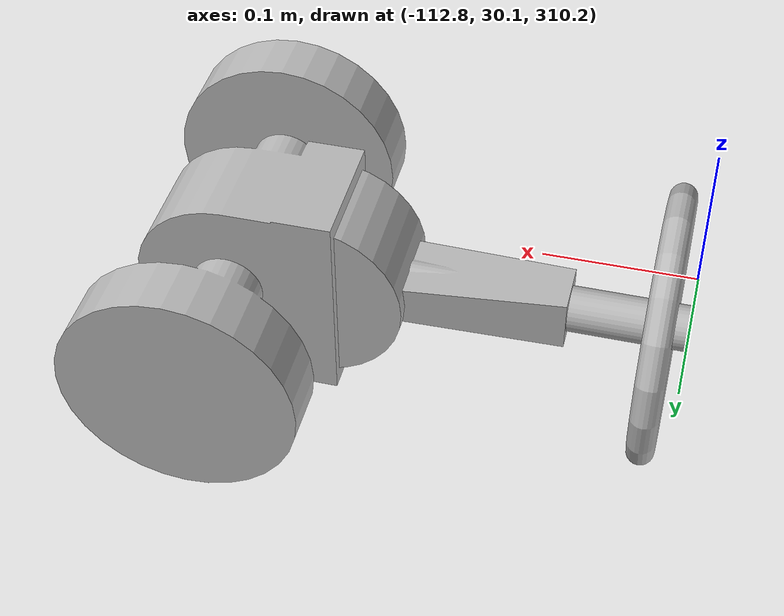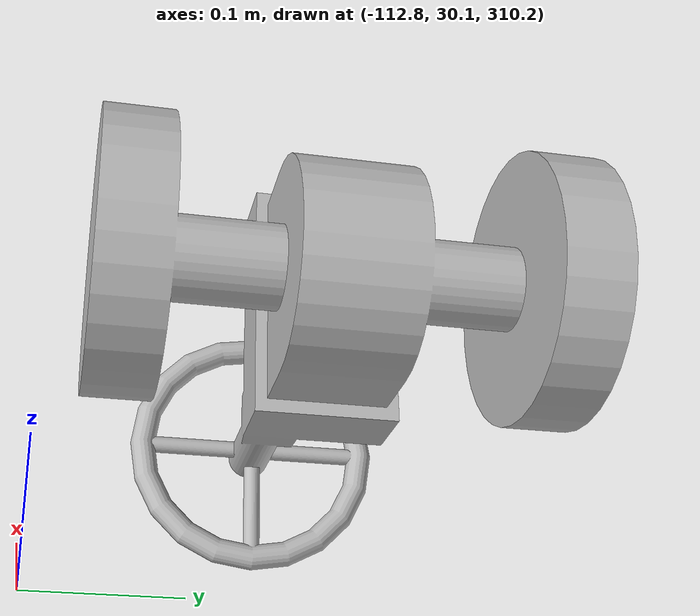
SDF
<?xml version='1.0'?>
<sdf version='1.7'>
    <model name='20-2006PL'>
        <static>true</static>
        <link name='link0'>
            <visual name="visual0">
                <pose>0 0 0 0 0 0</pose>
                <geometry>
                    <mesh>
                        <uri>model://huldra-models/20-2006PL/meshes/20-2006PL.obj</uri>
                    </mesh>
                </geometry>
            </visual>
        </link>
    </model>
</sdf>
